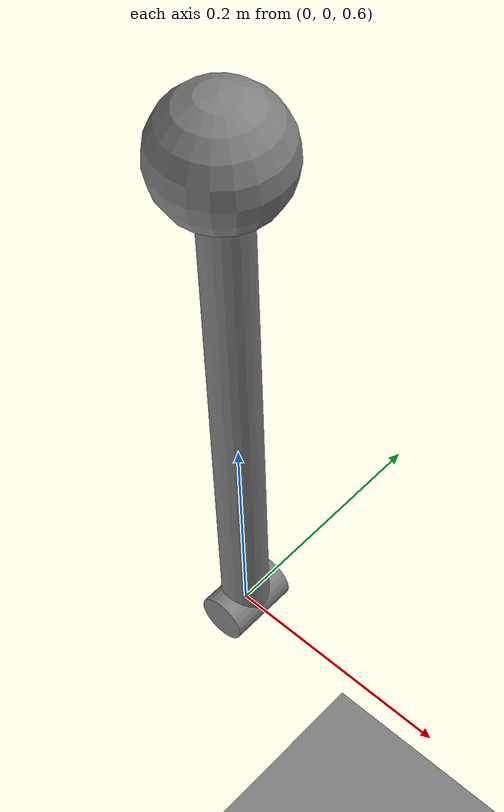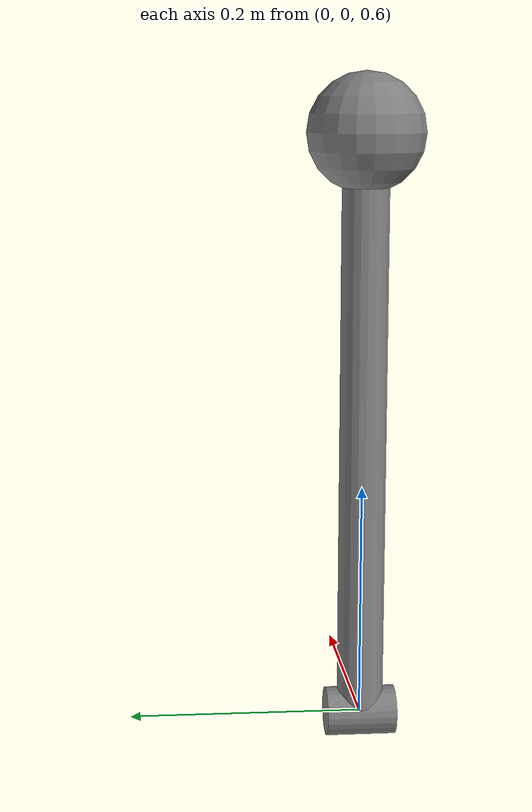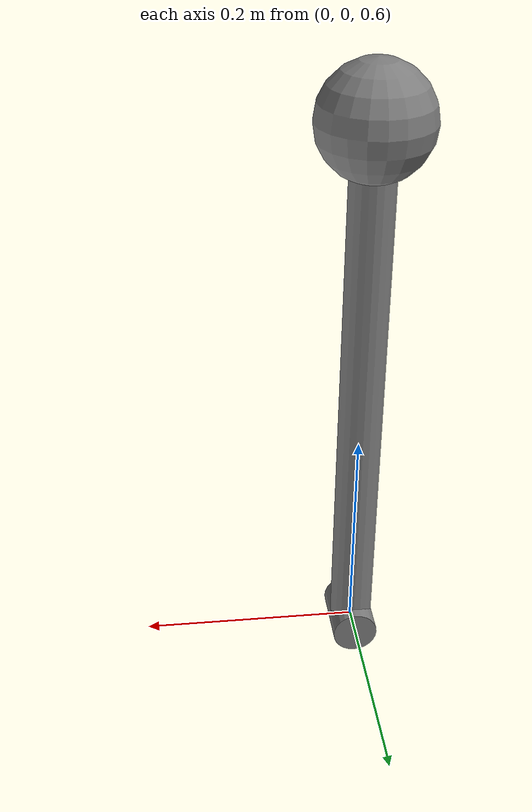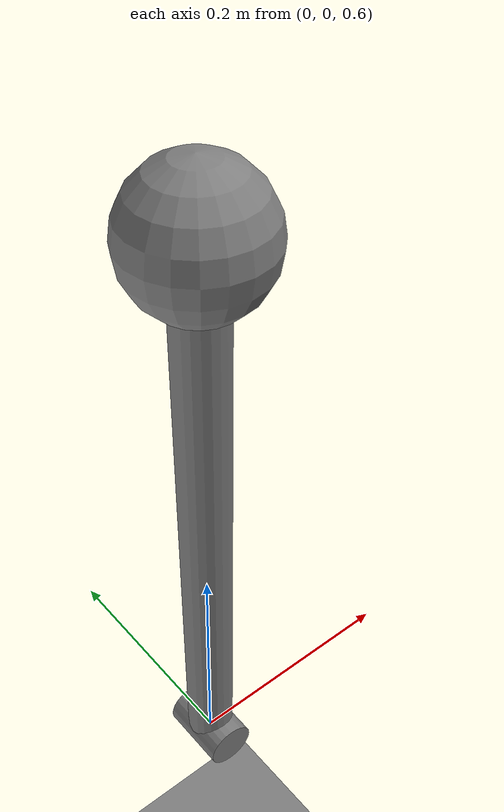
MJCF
<mujoco model="pendulum">

  <option timestep="0.02">
    <flag contact="disable" energy="enable"/>
  </option>

  <worldbody>
    <light name="light" pos="0 0 2"/>
    <geom name="floor" size="2 2 .2" type="plane" />
    <camera name="fixed" pos="0 -1.5 2" xyaxes='1 0 0 0 1 1'/>
    <camera name="lookat" mode="targetbodycom" target="pole" pos="0 -2 1"/>
    <body name="pole" pos="0 0 .6">
      <joint name="hinge" type="hinge" axis="0 1 0" damping="0.1"/>
      <geom name="base" type="cylinder" fromto="0 -.03 0 0 .03 0" size="0.021" mass="0"/>
      <geom name="pole"  type="capsule" fromto="0 0 0 0 0 0.5" size="0.02" mass="0"/>
      <geom name="mass" type="sphere" pos="0 0 0.5" size="0.05" mass="1"/>
      <site type='sphere' name='EE' size='.02' pos='0.0 0.0 0.5' rgba=" .5 .1 .1 1"/>
    </body>
  </worldbody>

  <actuator>
    <motor name="torque" joint="hinge" />
  </actuator>
</mujoco>
